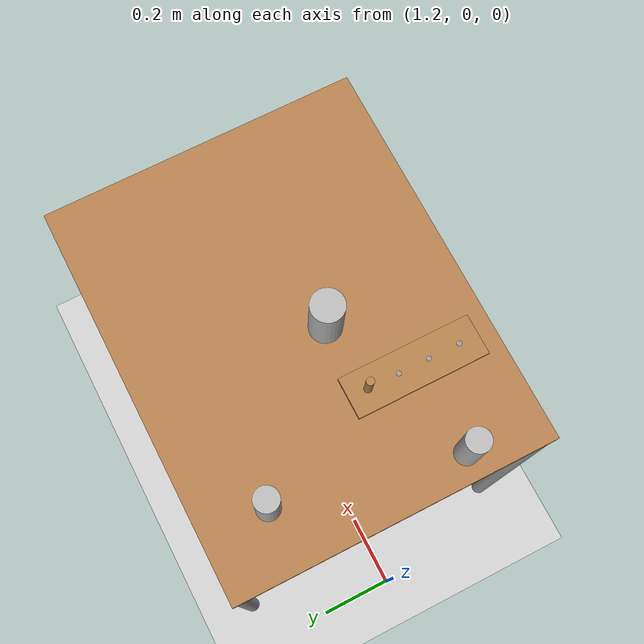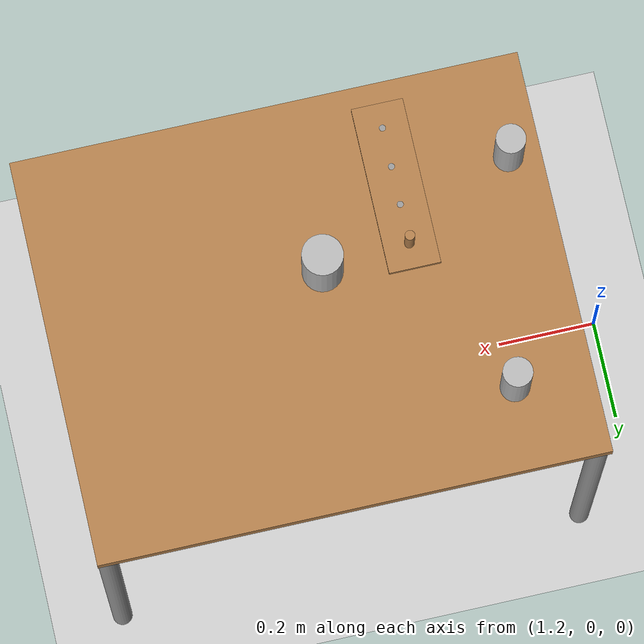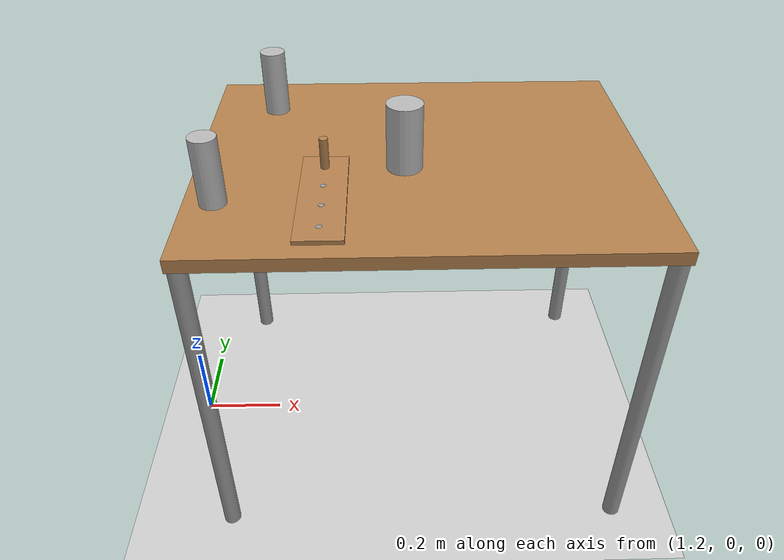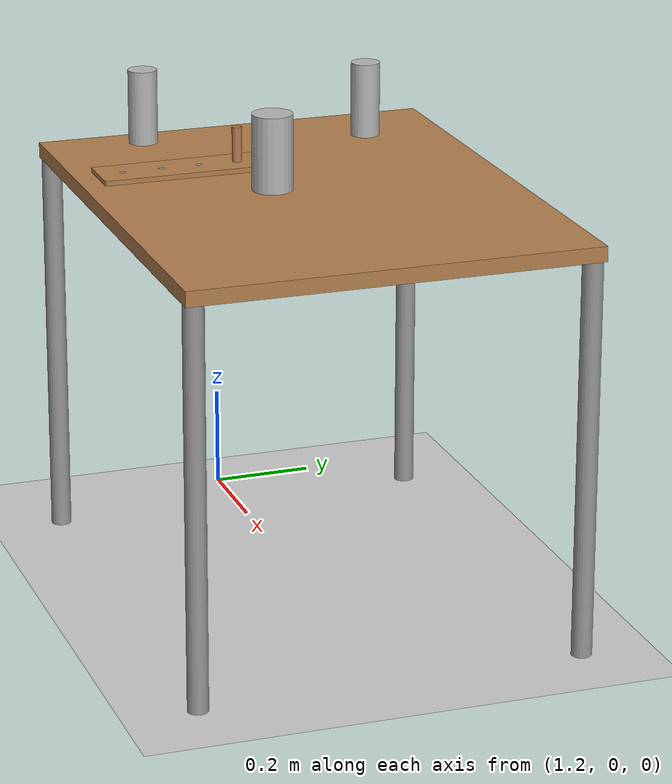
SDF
<sdf version="1.7">
 <world name="default">
  <plugin name="gazebo_ros_state" filename="libgazebo_ros_state.so">
   <ros><namespace>/gazebo</namespace></ros>
   <update_rate>1.0</update_rate>
  </plugin>
  <light name="sun" type="directional">
   <pose>0 0 10 0 -0 0</pose>
   <diffuse>0.8 0.8 0.8 1</diffuse>
   <specular>0.2 0.2 0.2 1</specular>
   <attenuation>
    <range>1000</range>
    <constant>0.9</constant>
    <linear>0.01</linear>
    <quadratic>0.001</quadratic>
   </attenuation>
   <direction>-0.5 0.1 -0.9</direction>
   <spot><inner_angle>0</inner_angle><outer_angle>0</outer_angle><falloff>0</falloff></spot>
  </light>
  <model name="ground_plane">
   <static>1</static>
   <link name="link">
    <collision name="collision">
     <geometry><plane><normal>0 0 1</normal><size>100 100</size></plane></geometry>
     <surface><friction><ode><mu>100</mu><mu2>50</mu2></ode></friction></surface>
    </collision>
    <visual name="visual">
     <cast_shadows>0</cast_shadows>
     <geometry><plane><normal>0 0 1</normal><size>100 100</size></plane></geometry>
     <material>
      <script><uri>file://media/materials/scripts/gazebo.material</uri><name>Gazebo/Grey</name></script>
     </material>
    </visual>
    <velocity_decay><linear>0</linear><angular>0</angular></velocity_decay>
   </link>
  </model>
  <physics type="ode">
   <ode>
    <solver>
     <type>quick</type>
     <iters>20</iters>
     <sor>1</sor>
     <use_dynamic_moi_rescaling>0</use_dynamic_moi_rescaling>
    </solver>
    <constraints>
     <cfm>0</cfm>
     <erp>0.2</erp>
     <contact_max_correcting_vel>100</contact_max_correcting_vel>
     <contact_surface_layer>0</contact_surface_layer>
    </constraints>
   </ode>
   <real_time_update_rate>1000</real_time_update_rate>
   <max_step_size>0.001</max_step_size>
   <real_time_factor>1</real_time_factor>
   <max_contacts>20</max_contacts>
  </physics>
  <scene><ambient>0.4 0.4 0.4 1</ambient><background>0.7 0.7 0.7 1</background><shadows>1</shadows></scene>
  <spherical_coordinates>
   <surface_model>EARTH_WGS84</surface_model>
   <latitude_deg>0</latitude_deg>
   <longitude_deg>0</longitude_deg>
   <elevation>0</elevation>
   <heading_deg>0</heading_deg>
  </spherical_coordinates>
  <gravity>0 0 -9.81</gravity>
  <magnetic_field>6e-06 2.3e-05 -4.2e-05</magnetic_field>
  <atmosphere type="adiabatic"/>
  <audio><device>default</device></audio>
  <model name="table">
   <static>1</static>
   <link name="link">
    <collision name="surface">
     <pose>0 0 0.8 0 -0 0</pose>
     <geometry><box><size>1 0.8 0.03</size></box></geometry>
    </collision>
    <visual name="visual1">
     <pose>0 0 0.8 0 -0 0</pose>
     <geometry><box><size>1 0.8 0.03</size></box></geometry>
     <material>
      <script><uri>file://media/materials/scripts/gazebo.material</uri><name>Gazebo/Wood</name></script>
     </material>
    </visual>
    <collision name="front_left_leg">
     <pose>0.48 0.38 0.4 0 -0 0</pose>
     <geometry><cylinder><radius>0.02</radius><length>0.8</length></cylinder></geometry>
    </collision>
    <visual name="front_left_leg">
     <pose>0.48 0.38 0.4 0 -0 0</pose>
     <geometry><cylinder><radius>0.02</radius><length>0.8</length></cylinder></geometry>
     <material>
      <script><uri>file://media/materials/scripts/gazebo.material</uri><name>Gazebo/Grey</name></script>
     </material>
    </visual>
    <collision name="front_right_leg">
     <pose>0.48 -0.38 0.4 0 -0 0</pose>
     <geometry><cylinder><radius>0.02</radius><length>0.8</length></cylinder></geometry>
    </collision>
    <visual name="front_right_leg">
     <pose>0.48 -0.38 0.4 0 -0 0</pose>
     <geometry><cylinder><radius>0.02</radius><length>0.8</length></cylinder></geometry>
     <material>
      <script><uri>file://media/materials/scripts/gazebo.material</uri><name>Gazebo/Grey</name></script>
     </material>
    </visual>
    <collision name="back_right_leg">
     <pose>-0.48 -0.38 0.4 0 -0 0</pose>
     <geometry><cylinder><radius>0.02</radius><length>0.8</length></cylinder></geometry>
    </collision>
    <visual name="back_right_leg">
     <pose>-0.48 -0.38 0.4 0 -0 0</pose>
     <geometry><cylinder><radius>0.02</radius><length>0.8</length></cylinder></geometry>
     <material>
      <script><uri>file://media/materials/scripts/gazebo.material</uri><name>Gazebo/Grey</name></script>
     </material>
    </visual>
    <collision name="back_left_leg">
     <pose>-0.48 0.38 0.4 0 -0 0</pose>
     <geometry><cylinder><radius>0.02</radius><length>0.8</length></cylinder></geometry>
    </collision>
    <visual name="back_left_leg">
     <pose>-0.48 0.38 0.4 0 -0 0</pose>
     <geometry><cylinder><radius>0.02</radius><length>0.8</length></cylinder></geometry>
     <material>
      <script><uri>file://media/materials/scripts/gazebo.material</uri><name>Gazebo/Grey</name></script>
     </material>
    </visual>
    <velocity_decay><linear>0</linear><angular>0</angular></velocity_decay>
   </link>
   <pose>1.8 0 0 0 -0 0</pose>
  </model>
  <model name="wooden_peg_board">
   <frame name="wooden_board::__model__" attached_to="wooden_board::base">
    <pose relative_to="__model__">0 0 0 0 -0 0</pose>
   </frame>
   <static>1</static>
   <link name="wooden_board::base">
    <pose relative_to="wooden_board::__model__">0 0 0.00523 0 -0 0</pose>
    <inertial>
     <mass>0.2765</mass>
     <inertia>
      <ixx>0.0025148</ixx>
      <ixy>0</ixy>
      <ixz>0</ixz>
      <iyy>0.00024037</iyy>
      <iyz>0</iyz>
      <izz>0.00275013</izz>
     </inertia>
    </inertial>
    <collision name="collision">
     <geometry><box><size>0.1016 0.3302 0.01046</size></box></geometry>
     <surface>
      <contact>
       <poissons_ratio>0.347</poissons_ratio>
       <elastic_modulus>8.8e+09</elastic_modulus>
       <ode><kp>100000</kp><kd>100</kd><max_vel>100</max_vel><min_depth>0.001</min_depth></ode>
      </contact>
      <friction>
       <torsional>
        <coefficient>1</coefficient>
        <use_patch_radius>0</use_patch_radius>
        <surface_radius>0.01</surface_radius>
       </torsional>
      </friction>
     </surface>
    </collision>
    <visual name="visual">
     <geometry><box><size>0.1016 0.3302 0.01046</size></box></geometry>
     <material>
      <script><uri>file://media/materials/scripts/gazebo.material</uri><name>Gazebo/Wood</name></script>
     </material>
    </visual>
    <visual name="tee_nut_1">
     <pose>0 -0.116 0 0 -0 0</pose>
     <geometry><cylinder><radius>0.00635</radius><length>0.0105646</length></cylinder></geometry>
     <material>
      <script><uri>file://media/materials/scripts/gazebo.material</uri><name>Gazebo/Grey</name></script>
     </material>
    </visual>
    <visual name="tee_nut_2">
     <pose>0 -0.038 0 0 -0 0</pose>
     <geometry><cylinder><radius>0.00635</radius><length>0.0105646</length></cylinder></geometry>
     <material>
      <script><uri>file://media/materials/scripts/gazebo.material</uri><name>Gazebo/Grey</name></script>
     </material>
    </visual>
    <visual name="tee_nut_3">
     <pose>0 0.038 0 0 -0 0</pose>
     <geometry><cylinder><radius>0.00635</radius><length>0.0105646</length></cylinder></geometry>
     <material>
      <script><uri>file://media/materials/scripts/gazebo.material</uri><name>Gazebo/Grey</name></script>
     </material>
    </visual>
    <visual name="tee_nut_4">
     <pose>0 0.116 0 0 -0 0</pose>
     <geometry><cylinder><radius>0.00635</radius><length>0.0105646</length></cylinder></geometry>
     <material>
      <script><uri>file://media/materials/scripts/gazebo.material</uri><name>Gazebo/Grey</name></script>
     </material>
    </visual>
   </link>
   <frame name="peg::__model__" attached_to="peg::link">
    <pose relative_to="__model__">0 0.116 0 0 -0 0</pose>
   </frame>
   <link name="peg::link">
    <pose relative_to="peg::__model__">0 0 0.04 0 -0 0</pose>
    <inertial>
     <mass>0.0175</mass>
     <inertia>
      <ixx>9.74923e-06</ixx>
      <ixy>0</ixy>
      <ixz>0</ixz>
      <iyy>9.74923e-06</iyy>
      <iyz>0</iyz>
      <izz>8.31797e-07</izz>
     </inertia>
    </inertial>
    <collision name="collision">
     <geometry><cylinder><radius>0.00975</radius><length>0.08</length></cylinder></geometry>
     <surface>
      <contact>
       <poissons_ratio>0.347</poissons_ratio>
       <elastic_modulus>8.8e+09</elastic_modulus>
       <ode><kp>100000</kp><kd>100</kd><max_vel>100</max_vel><min_depth>0.001</min_depth></ode>
      </contact>
      <friction>
       <torsional>
        <coefficient>1</coefficient>
        <use_patch_radius>0</use_patch_radius>
        <surface_radius>0.01</surface_radius>
       </torsional>
      </friction>
     </surface>
    </collision>
    <visual name="visual">
     <geometry><cylinder><radius>0.00975</radius><length>0.08</length></cylinder></geometry>
     <material>
      <script><uri>file://media/materials/scripts/gazebo.material</uri><name>Gazebo/Wood</name></script>
     </material>
    </visual>
   </link>
   <joint name="board_peg" type="revolute">
    <parent>wooden_board::base</parent>
    <child>peg::link</child>
    <axis>
     <xyz>0 0 1</xyz>
     <limit><upper>0</upper><lower>0</lower></limit>
     <dynamics><spring_reference>0</spring_reference><spring_stiffness>0</spring_stiffness></dynamics>
    </axis>
   </joint>
   <pose>1.58724 -0.192029 0.814496 0.003037 2.8e-05 -0.00013</pose>
  </model>
  <model name="cocacola">
   <static>0</static>
   <link name="link">
    <inertial>
     <mass>0.25</mass>
     <inertia><ixx>0</ixx><ixy>0</ixy><ixz>0</ixz><iyy>0</iyy><iyz>0</iyz><izz>0</izz></inertia>
    </inertial>
    <collision name="collision">
     <pose>0 0 0.075 -3.14159 -0 0</pose>
     <geometry><cylinder><radius>0.04</radius><length>0.15</length></cylinder></geometry>
    </collision>
    <visual name="visual">
     <pose>0 0 0.075 -3.14159 -0 0</pose>
     <geometry><cylinder><radius>0.04</radius><length>0.15</length></cylinder></geometry>
     <material>
      <script>
       <uri>model://cocacola/material/scripts</uri>
       <uri>model://cocacola/material/textures</uri>
       <name>Custom/cocacola</name>
      </script>
     </material>
    </visual>
    <velocity_decay><linear>0</linear><angular>0</angular></velocity_decay>
   </link>
   <pose>1.76065 -0.060638 0.815007 8e-06 0.00017 -1.2e-05</pose>
  </model>
  <model name="coke_can_slim">
   <allow_auto_disable>0</allow_auto_disable>
   <static>0</static>
   <link name="link">
    <inertial>
     <mass>0.15</mass>
     <inertia><ixx>2079.98</ixx><ixy>0</ixy><ixz>0</ixz><iyy>2079.98</iyy><iyz>0</iyz><izz>419.21</izz></inertia>
    </inertial>
    <collision name="collision">
     <geometry><cylinder><radius>0.029</radius><length>0.15</length></cylinder></geometry>
    </collision>
    <visual name="visual">
     <geometry><cylinder><radius>0.029</radius><length>0.15</length></cylinder></geometry>
     <material>
      <script>
       <uri>model://coke_can_slim/material/scripts</uri>
       <uri>model://coke_can_slim/material/textures</uri>
       <name>Custom/coke_can_slim</name>
      </script>
     </material>
    </visual>
    <velocity_decay><linear>0</linear><angular>0</angular></velocity_decay>
   </link>
   <pose>1.45329 0.238419 0.890037 -0.001229 0.000376 0.000294</pose>
  </model>
  <model name="coke_can_slim_clone">
   <allow_auto_disable>0</allow_auto_disable>
   <static>0</static>
   <link name="link">
    <inertial>
     <mass>0.15</mass>
     <inertia><ixx>2079.98</ixx><ixy>0</ixy><ixz>0</ixz><iyy>2079.98</iyy><iyz>0</iyz><izz>419.21</izz></inertia>
    </inertial>
    <collision name="collision">
     <geometry><cylinder><radius>0.029</radius><length>0.15</length></cylinder></geometry>
    </collision>
    <visual name="visual">
     <geometry><cylinder><radius>0.029</radius><length>0.15</length></cylinder></geometry>
     <material>
      <script>
       <uri>model://coke_can_slim/material/scripts</uri>
       <uri>model://coke_can_slim/material/textures</uri>
       <name>Custom/coke_can_slim</name>
      </script>
     </material>
    </visual>
    <velocity_decay><linear>0</linear><angular>0</angular></velocity_decay>
   </link>
   <pose>1.36416 -0.201428 0.890001 -0.000268 0.000275 0.000341</pose>
  </model>
 </world>
</sdf>
